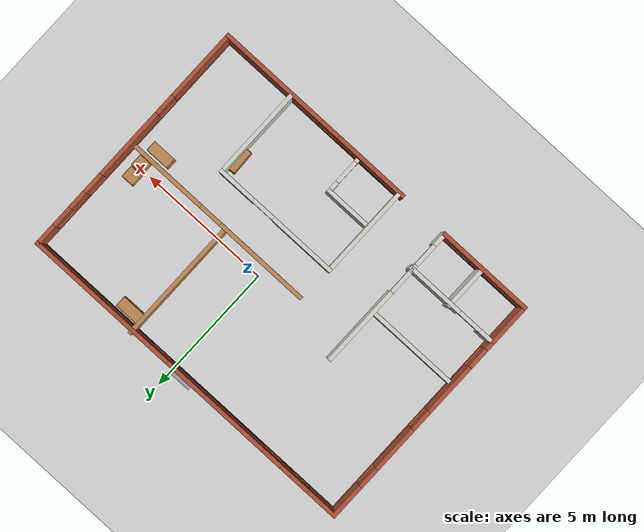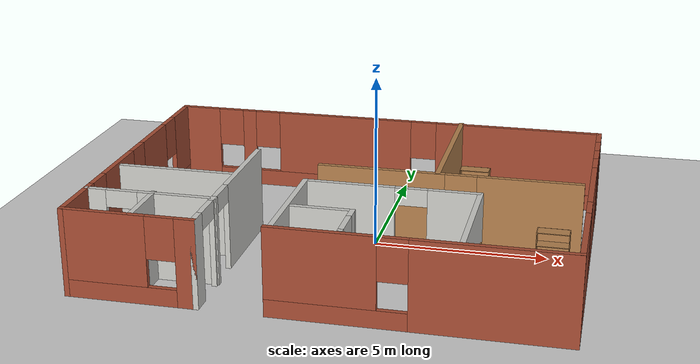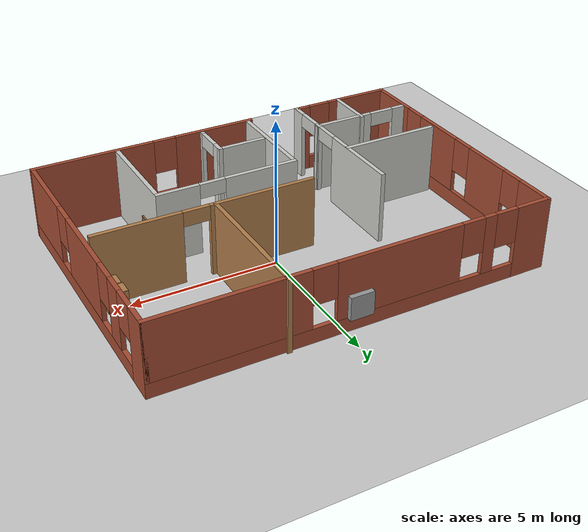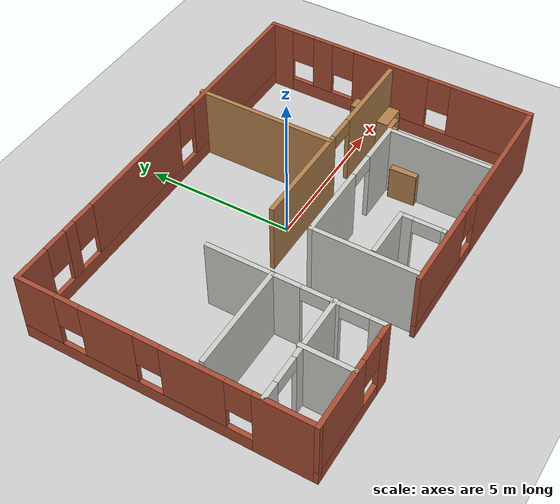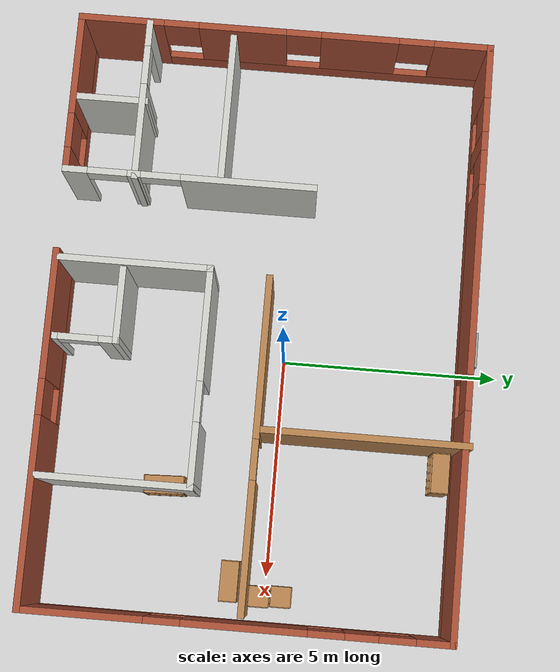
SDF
<sdf version="1.7">
 <world name="default">
  <model name="ground_plane">
   <static>1</static>
   <link name="link">
    <collision name="collision">
     <geometry><plane><normal>0 0 1</normal><size>100 100</size></plane></geometry>
     <surface><friction><ode><mu>100</mu><mu2>50</mu2></ode></friction></surface>
    </collision>
    <visual name="visual">
     <cast_shadows>0</cast_shadows>
     <geometry><plane><normal>0 0 1</normal><size>100 100</size></plane></geometry>
     <material>
      <script><uri>file://media/materials/scripts/gazebo.material</uri><name>Gazebo/Grey</name></script>
     </material>
    </visual>
   </link>
  </model>
  <model name="floorplan2">
   <pose>-0.563381 -0.503591 0 0 -0 0</pose>
   <link name="Wall_0">
    <pose>-4.875 -4.71583 0 0 -0 3.14159</pose>
    <visual name="Wall_0_Visual_0">
     <pose>-1.58866 0 1.25 0 -0 0</pose>
     <geometry><box><size>0.572682 0.15 2.5</size></box></geometry>
     <material>
      <script><uri>file://media/materials/scripts/gazebo.material</uri><name>Gazebo/Bricks</name></script>
      <ambient>1 1 1 1</ambient>
     </material>
     <meta><layer>0</layer></meta>
    </visual>
    <collision name="Wall_0_Collision_0">
     <geometry><box><size>0.572682 0.15 2.5</size></box></geometry>
     <pose>-1.58866 0 1.25 0 -0 0</pose>
    </collision>
    <visual name="Wall_0_Visual_1">
     <pose>0.286341 0 0.25 0 -0 0</pose>
     <geometry><box><size>3.17732 0.15 0.5</size></box></geometry>
     <material>
      <script><uri>file://media/materials/scripts/gazebo.material</uri><name>Gazebo/Bricks</name></script>
      <ambient>1 1 1 1</ambient>
     </material>
     <meta><layer>0</layer></meta>
    </visual>
    <collision name="Wall_0_Collision_1">
     <geometry><box><size>3.17732 0.15 0.5</size></box></geometry>
     <pose>0.286341 0 0.25 0 -0 0</pose>
    </collision>
    <visual name="Wall_0_Visual_2">
     <pose>0.686341 0 1.5 0 -0 0</pose>
     <geometry><box><size>2.37732 0.15 2</size></box></geometry>
     <material>
      <script><uri>file://media/materials/scripts/gazebo.material</uri><name>Gazebo/Bricks</name></script>
      <ambient>1 1 1 1</ambient>
     </material>
     <meta><layer>0</layer></meta>
    </visual>
    <collision name="Wall_0_Collision_2">
     <geometry><box><size>2.37732 0.15 2</size></box></geometry>
     <pose>0.686341 0 1.5 0 -0 0</pose>
    </collision>
    <visual name="Wall_0_Visual_3">
     <pose>-0.902318 0 1.9 0 -0 0</pose>
     <geometry><box><size>0.8 0.15 1.2</size></box></geometry>
     <material>
      <script><uri>file://media/materials/scripts/gazebo.material</uri><name>Gazebo/Bricks</name></script>
      <ambient>1 1 1 1</ambient>
     </material>
     <meta><layer>0</layer></meta>
    </visual>
    <collision name="Wall_0_Collision_3">
     <geometry><box><size>0.8 0.15 1.2</size></box></geometry>
     <pose>-0.902318 0 1.9 0 -0 0</pose>
    </collision>
   </link>
   <link name="Wall_1">
    <pose>-6.675 -0.040833 0 0 -0 1.5708</pose>
    <visual name="Wall_1_Visual_0">
     <pose>-3.77003 0 1.25 0 -0 0</pose>
     <geometry><box><size>1.95995 0.15 2.5</size></box></geometry>
     <material>
      <script><uri>file://media/materials/scripts/gazebo.material</uri><name>Gazebo/Bricks</name></script>
      <ambient>1 1 1 1</ambient>
     </material>
     <meta><layer>0</layer></meta>
    </visual>
    <collision name="Wall_1_Collision_0">
     <geometry><box><size>1.95995 0.15 2.5</size></box></geometry>
     <pose>-3.77003 0 1.25 0 -0 0</pose>
    </collision>
    <visual name="Wall_1_Visual_1">
     <pose>0.979973 0 0.25 0 -0 0</pose>
     <geometry><box><size>7.54005 0.15 0.5</size></box></geometry>
     <material>
      <script><uri>file://media/materials/scripts/gazebo.material</uri><name>Gazebo/Bricks</name></script>
      <ambient>1 1 1 1</ambient>
     </material>
     <meta><layer>0</layer></meta>
    </visual>
    <collision name="Wall_1_Collision_1">
     <geometry><box><size>7.54005 0.15 0.5</size></box></geometry>
     <pose>0.979973 0 0.25 0 -0 0</pose>
    </collision>
    <visual name="Wall_1_Visual_2">
     <pose>-0.987882 0 1.5 0 -0 0</pose>
     <geometry><box><size>2.00434 0.15 2</size></box></geometry>
     <material>
      <script><uri>file://media/materials/scripts/gazebo.material</uri><name>Gazebo/Bricks</name></script>
      <ambient>1 1 1 1</ambient>
     </material>
     <meta><layer>0</layer></meta>
    </visual>
    <collision name="Wall_1_Collision_2">
     <geometry><box><size>2.00434 0.15 2</size></box></geometry>
     <pose>-0.987882 0 1.5 0 -0 0</pose>
    </collision>
    <visual name="Wall_1_Visual_3">
     <pose>1.70516 0 1.5 0 -0 0</pose>
     <geometry><box><size>1.78173 0.15 2</size></box></geometry>
     <material>
      <script><uri>file://media/materials/scripts/gazebo.material</uri><name>Gazebo/Bricks</name></script>
      <ambient>1 1 1 1</ambient>
     </material>
     <meta><layer>0</layer></meta>
    </visual>
    <collision name="Wall_1_Collision_3">
     <geometry><box><size>1.78173 0.15 2</size></box></geometry>
     <pose>1.70516 0 1.5 0 -0 0</pose>
    </collision>
    <visual name="Wall_1_Visual_4">
     <pose>4.07301 0 1.5 0 -0 0</pose>
     <geometry><box><size>1.35398 0.15 2</size></box></geometry>
     <material>
      <script><uri>file://media/materials/scripts/gazebo.material</uri><name>Gazebo/Bricks</name></script>
      <ambient>1 1 1 1</ambient>
     </material>
     <meta><layer>0</layer></meta>
    </visual>
    <collision name="Wall_1_Collision_4">
     <geometry><box><size>1.35398 0.15 2</size></box></geometry>
     <pose>4.07301 0 1.5 0 -0 0</pose>
    </collision>
    <visual name="Wall_1_Visual_5">
     <pose>-2.39005 0 1.9 0 -0 0</pose>
     <geometry><box><size>0.8 0.15 1.2</size></box></geometry>
     <material>
      <script><uri>file://media/materials/scripts/gazebo.material</uri><name>Gazebo/Bricks</name></script>
      <ambient>1 1 1 1</ambient>
     </material>
     <meta><layer>0</layer></meta>
    </visual>
    <collision name="Wall_1_Collision_5">
     <geometry><box><size>0.8 0.15 1.2</size></box></geometry>
     <pose>-2.39005 0 1.9 0 -0 0</pose>
    </collision>
    <visual name="Wall_1_Visual_6">
     <pose>0.41429 0 1.9 0 -0 0</pose>
     <geometry><box><size>0.8 0.15 1.2</size></box></geometry>
     <material>
      <script><uri>file://media/materials/scripts/gazebo.material</uri><name>Gazebo/Bricks</name></script>
      <ambient>1 1 1 1</ambient>
     </material>
     <meta><layer>0</layer></meta>
    </visual>
    <collision name="Wall_1_Collision_6">
     <geometry><box><size>0.8 0.15 1.2</size></box></geometry>
     <pose>0.41429 0 1.9 0 -0 0</pose>
    </collision>
    <visual name="Wall_1_Visual_7">
     <pose>2.99602 0 1.9 0 -0 0</pose>
     <geometry><box><size>0.8 0.15 1.2</size></box></geometry>
     <material>
      <script><uri>file://media/materials/scripts/gazebo.material</uri><name>Gazebo/Bricks</name></script>
      <ambient>1 1 1 1</ambient>
     </material>
     <meta><layer>0</layer></meta>
    </visual>
    <collision name="Wall_1_Collision_7">
     <geometry><box><size>0.8 0.15 1.2</size></box></geometry>
     <pose>2.99602 0 1.9 0 -0 0</pose>
    </collision>
   </link>
   <link name="Wall_11">
    <pose>1.37216 -1.26136 0 0 -0 0</pose>
    <visual name="Wall_11_Visual_0">
     <pose>-1.2012 0 1.25 0 -0 0</pose>
     <geometry><box><size>2.59761 0.15 2.5</size></box></geometry>
     <material>
      <script><uri>file://media/materials/scripts/gazebo.material</uri><name>Gazebo/CeilingTiled</name></script>
      <ambient>1 1 1 1</ambient>
     </material>
     <meta><layer>0</layer></meta>
    </visual>
    <collision name="Wall_11_Collision_0">
     <geometry><box><size>2.59761 0.15 2.5</size></box></geometry>
     <pose>-1.2012 0 1.25 0 -0 0</pose>
    </collision>
    <visual name="Wall_11_Visual_1">
     <pose>1.7488 0 1.25 0 -0 0</pose>
     <geometry><box><size>1.50239 0.15 2.5</size></box></geometry>
     <material>
      <script><uri>file://media/materials/scripts/gazebo.material</uri><name>Gazebo/CeilingTiled</name></script>
      <ambient>1 1 1 1</ambient>
     </material>
     <meta><layer>0</layer></meta>
    </visual>
    <collision name="Wall_11_Collision_1">
     <geometry><box><size>1.50239 0.15 2.5</size></box></geometry>
     <pose>1.7488 0 1.25 0 -0 0</pose>
    </collision>
    <visual name="Wall_11_Visual_2">
     <pose>0.547606 0 2.25 0 -0 0</pose>
     <geometry><box><size>0.9 0.15 0.5</size></box></geometry>
     <material>
      <script><uri>file://media/materials/scripts/gazebo.material</uri><name>Gazebo/CeilingTiled</name></script>
      <ambient>1 1 1 1</ambient>
     </material>
     <meta><layer>0</layer></meta>
    </visual>
    <collision name="Wall_11_Collision_2">
     <geometry><box><size>0.9 0.15 0.5</size></box></geometry>
     <pose>0.547606 0 2.25 0 -0 0</pose>
    </collision>
   </link>
   <link name="Wall_12">
    <collision name="Wall_12_Collision">
     <geometry><box><size>3.5 0.15 2.5</size></box></geometry>
     <pose>0 0 1.25 0 -0 0</pose>
    </collision>
    <visual name="Wall_12_Visual">
     <pose>0 0 1.25 0 -0 0</pose>
     <geometry><box><size>3.5 0.15 2.5</size></box></geometry>
     <material>
      <script><uri>file://media/materials/scripts/gazebo.material</uri><name>Gazebo/CeilingTiled</name></script>
      <ambient>1 1 1 1</ambient>
     </material>
     <meta><layer>0</layer></meta>
    </visual>
    <pose>3.79716 -2.93636 0 0 -0 -1.5708</pose>
   </link>
   <link name="Wall_14">
    <pose>-3.075 -1.91583 0 0 -0 1.5708</pose>
    <visual name="Wall_14_Visual_0">
     <pose>-2.59122 0 1.25 0 -0 0</pose>
     <geometry><box><size>0.567569 0.15 2.5</size></box></geometry>
     <material>
      <script><uri>file://media/materials/scripts/gazebo.material</uri><name>Gazebo/CeilingTiled</name></script>
      <ambient>1 1 1 1</ambient>
     </material>
     <meta><layer>0</layer></meta>
    </visual>
    <collision name="Wall_14_Collision_0">
     <geometry><box><size>0.567569 0.15 2.5</size></box></geometry>
     <pose>-2.59122 0 1.25 0 -0 0</pose>
    </collision>
    <visual name="Wall_14_Visual_1">
     <pose>-1.25629 0 1.25 0 -0 0</pose>
     <geometry><box><size>0.302276 0.15 2.5</size></box></geometry>
     <material>
      <script><uri>file://media/materials/scripts/gazebo.material</uri><name>Gazebo/CeilingTiled</name></script>
      <ambient>1 1 1 1</ambient>
     </material>
     <meta><layer>0</layer></meta>
    </visual>
    <collision name="Wall_14_Collision_1">
     <geometry><box><size>0.302276 0.15 2.5</size></box></geometry>
     <pose>-1.25629 0 1.25 0 -0 0</pose>
    </collision>
    <visual name="Wall_14_Visual_2">
     <pose>1.33492 0 1.25 0 -0 0</pose>
     <geometry><box><size>3.08015 0.15 2.5</size></box></geometry>
     <material>
      <script><uri>file://media/materials/scripts/gazebo.material</uri><name>Gazebo/CeilingTiled</name></script>
      <ambient>1 1 1 1</ambient>
     </material>
     <meta><layer>0</layer></meta>
    </visual>
    <collision name="Wall_14_Collision_2">
     <geometry><box><size>3.08015 0.15 2.5</size></box></geometry>
     <pose>1.33492 0 1.25 0 -0 0</pose>
    </collision>
    <visual name="Wall_14_Visual_3">
     <pose>-1.85743 0 2.25 0 -0 0</pose>
     <geometry><box><size>0.9 0.15 0.5</size></box></geometry>
     <material>
      <script><uri>file://media/materials/scripts/gazebo.material</uri><name>Gazebo/CeilingTiled</name></script>
      <ambient>1 1 1 1</ambient>
     </material>
     <meta><layer>0</layer></meta>
    </visual>
    <collision name="Wall_14_Collision_3">
     <geometry><box><size>0.9 0.15 0.5</size></box></geometry>
     <pose>-1.85743 0 2.25 0 -0 0</pose>
    </collision>
    <visual name="Wall_14_Visual_4">
     <pose>-0.655155 0 2.25 0 -0 0</pose>
     <geometry><box><size>0.9 0.15 0.5</size></box></geometry>
     <material>
      <script><uri>file://media/materials/scripts/gazebo.material</uri><name>Gazebo/CeilingTiled</name></script>
      <ambient>1 1 1 1</ambient>
     </material>
     <meta><layer>0</layer></meta>
    </visual>
    <collision name="Wall_14_Collision_4">
     <geometry><box><size>0.9 0.15 0.5</size></box></geometry>
     <pose>-0.655155 0 2.25 0 -0 0</pose>
    </collision>
   </link>
   <link name="Wall_16">
    <collision name="Wall_16_Collision">
     <geometry><box><size>3.5 0.15 2.5</size></box></geometry>
     <pose>0 0 1.25 0 -0 0</pose>
    </collision>
    <visual name="Wall_16_Visual">
     <pose>0 0 1.25 0 -0 0</pose>
     <geometry><box><size>3.5 0.15 2.5</size></box></geometry>
     <material>
      <script><uri>file://media/materials/scripts/gazebo.material</uri><name>Gazebo/CeilingTiled</name></script>
      <ambient>1 1 1 1</ambient>
     </material>
     <meta><layer>0</layer></meta>
    </visual>
    <pose>-4.76821 -1.2166 0 0 -0 3.14159</pose>
   </link>
   <link name="Wall_18">
    <pose>-4.84044 -3.15144 0 0 -0 3.14159</pose>
    <visual name="Wall_18_Visual_0">
     <pose>-0.760886 0 1.25 0 -0 0</pose>
     <geometry><box><size>2.22823 0.15 2.5</size></box></geometry>
     <material>
      <script><uri>file://media/materials/scripts/gazebo.material</uri><name>Gazebo/CeilingTiled</name></script>
      <ambient>1 1 1 1</ambient>
     </material>
     <meta><layer>0</layer></meta>
    </visual>
    <collision name="Wall_18_Collision_0">
     <geometry><box><size>2.22823 0.15 2.5</size></box></geometry>
     <pose>-0.760886 0 1.25 0 -0 0</pose>
    </collision>
    <visual name="Wall_18_Visual_1">
     <pose>1.56411 0 1.25 0 -0 0</pose>
     <geometry><box><size>0.621771 0.15 2.5</size></box></geometry>
     <material>
      <script><uri>file://media/materials/scripts/gazebo.material</uri><name>Gazebo/CeilingTiled</name></script>
      <ambient>1 1 1 1</ambient>
     </material>
     <meta><layer>0</layer></meta>
    </visual>
    <collision name="Wall_18_Collision_1">
     <geometry><box><size>0.621771 0.15 2.5</size></box></geometry>
     <pose>1.56411 0 1.25 0 -0 0</pose>
    </collision>
    <visual name="Wall_18_Visual_2">
     <pose>0.803229 0 2.25 0 -0 0</pose>
     <geometry><box><size>0.9 0.15 0.5</size></box></geometry>
     <material>
      <script><uri>file://media/materials/scripts/gazebo.material</uri><name>Gazebo/CeilingTiled</name></script>
      <ambient>1 1 1 1</ambient>
     </material>
     <meta><layer>0</layer></meta>
    </visual>
    <collision name="Wall_18_Collision_2">
     <geometry><box><size>0.9 0.15 0.5</size></box></geometry>
     <pose>0.803229 0 2.25 0 -0 0</pose>
    </collision>
   </link>
   <link name="Wall_2">
    <pose>-0 4.63417 0 0 -0 0</pose>
    <visual name="Wall_2_Visual_0">
     <pose>-6.1235 0 1.25 0 -0 0</pose>
     <geometry><box><size>1.25301 0.15 2.5</size></box></geometry>
     <material>
      <script><uri>file://media/materials/scripts/gazebo.material</uri><name>Gazebo/Bricks</name></script>
      <ambient>1 1 1 1</ambient>
     </material>
     <meta><layer>0</layer></meta>
    </visual>
    <collision name="Wall_2_Collision_0">
     <geometry><box><size>1.25301 0.15 2.5</size></box></geometry>
     <pose>-6.1235 0 1.25 0 -0 0</pose>
    </collision>
    <visual name="Wall_2_Visual_1">
     <pose>0.626503 0 0.25 0 -0 0</pose>
     <geometry><box><size>12.247 0.15 0.5</size></box></geometry>
     <material>
      <script><uri>file://media/materials/scripts/gazebo.material</uri><name>Gazebo/Bricks</name></script>
      <ambient>1 1 1 1</ambient>
     </material>
     <meta><layer>0</layer></meta>
    </visual>
    <collision name="Wall_2_Collision_1">
     <geometry><box><size>12.247 0.15 0.5</size></box></geometry>
     <pose>0.626503 0 0.25 0 -0 0</pose>
    </collision>
    <visual name="Wall_2_Visual_2">
     <pose>-4.48199 0 1.5 0 -0 0</pose>
     <geometry><box><size>0.43 0.15 2</size></box></geometry>
     <material>
      <script><uri>file://media/materials/scripts/gazebo.material</uri><name>Gazebo/Bricks</name></script>
      <ambient>1 1 1 1</ambient>
     </material>
     <meta><layer>0</layer></meta>
    </visual>
    <collision name="Wall_2_Collision_2">
     <geometry><box><size>0.43 0.15 2</size></box></geometry>
     <pose>-4.48199 0 1.5 0 -0 0</pose>
    </collision>
    <visual name="Wall_2_Visual_3">
     <pose>-1.31329 0 1.5 0 -0 0</pose>
     <geometry><box><size>4.30742 0.15 2</size></box></geometry>
     <material>
      <script><uri>file://media/materials/scripts/gazebo.material</uri><name>Gazebo/Bricks</name></script>
      <ambient>1 1 1 1</ambient>
     </material>
     <meta><layer>0</layer></meta>
    </visual>
    <collision name="Wall_2_Collision_3">
     <geometry><box><size>4.30742 0.15 2</size></box></geometry>
     <pose>-1.31329 0 1.5 0 -0 0</pose>
    </collision>
    <visual name="Wall_2_Visual_4">
     <pose>4.19521 0 1.5 0 -0 0</pose>
     <geometry><box><size>5.10958 0.15 2</size></box></geometry>
     <material>
      <script><uri>file://media/materials/scripts/gazebo.material</uri><name>Gazebo/Bricks</name></script>
      <ambient>1 1 1 1</ambient>
     </material>
     <meta><layer>0</layer></meta>
    </visual>
    <collision name="Wall_2_Collision_4">
     <geometry><box><size>5.10958 0.15 2</size></box></geometry>
     <pose>4.19521 0 1.5 0 -0 0</pose>
    </collision>
    <visual name="Wall_2_Visual_5">
     <pose>-5.09699 0 1.9 0 -0 0</pose>
     <geometry><box><size>0.8 0.15 1.2</size></box></geometry>
     <material>
      <script><uri>file://media/materials/scripts/gazebo.material</uri><name>Gazebo/Bricks</name></script>
      <ambient>1 1 1 1</ambient>
     </material>
     <meta><layer>0</layer></meta>
    </visual>
    <collision name="Wall_2_Collision_5">
     <geometry><box><size>0.8 0.15 1.2</size></box></geometry>
     <pose>-5.09699 0 1.9 0 -0 0</pose>
    </collision>
    <visual name="Wall_2_Visual_6">
     <pose>-3.86699 0 1.9 0 -0 0</pose>
     <geometry><box><size>0.8 0.15 1.2</size></box></geometry>
     <material>
      <script><uri>file://media/materials/scripts/gazebo.material</uri><name>Gazebo/Bricks</name></script>
      <ambient>1 1 1 1</ambient>
     </material>
     <meta><layer>0</layer></meta>
    </visual>
    <collision name="Wall_2_Collision_6">
     <geometry><box><size>0.8 0.15 1.2</size></box></geometry>
     <pose>-3.86699 0 1.9 0 -0 0</pose>
    </collision>
    <visual name="Wall_2_Visual_7">
     <pose>1.24042 0 1.9 0 -0 0</pose>
     <geometry><box><size>0.8 0.15 1.2</size></box></geometry>
     <material>
      <script><uri>file://media/materials/scripts/gazebo.material</uri><name>Gazebo/Bricks</name></script>
      <ambient>1 1 1 1</ambient>
     </material>
     <meta><layer>0</layer></meta>
    </visual>
    <collision name="Wall_2_Collision_7">
     <geometry><box><size>0.8 0.15 1.2</size></box></geometry>
     <pose>1.24042 0 1.9 0 -0 0</pose>
    </collision>
   </link>
   <link name="Wall_26">
    <collision name="Wall_26_Collision">
     <geometry><box><size>3.5 0.15 2.5</size></box></geometry>
     <pose>0 0 1.25 0 -0 0</pose>
    </collision>
    <visual name="Wall_26_Visual">
     <pose>0 0 1.25 0 -0 0</pose>
     <geometry><box><size>3.5 0.15 2.5</size></box></geometry>
     <material>
      <script><uri>file://media/materials/scripts/gazebo.material</uri><name>Gazebo/CeilingTiled</name></script>
      <ambient>1 1 1 1</ambient>
     </material>
     <meta><layer>0</layer></meta>
    </visual>
    <pose>-1.05284 -2.93636 0 0 -0 -1.5708</pose>
   </link>
   <link name="Wall_29">
    <pose>2.75 -4.71583 0 0 -0 3.14159</pose>
    <visual name="Wall_29_Visual_0">
     <pose>-1.87283 0 1.25 0 -0 0</pose>
     <geometry><box><size>4.25434 0.15 2.5</size></box></geometry>
     <material>
      <script><uri>file://media/materials/scripts/gazebo.material</uri><name>Gazebo/Bricks</name></script>
      <ambient>1 1 1 1</ambient>
     </material>
     <meta><layer>0</layer></meta>
    </visual>
    <collision name="Wall_29_Collision_0">
     <geometry><box><size>4.25434 0.15 2.5</size></box></geometry>
     <pose>-1.87283 0 1.25 0 -0 0</pose>
    </collision>
    <visual name="Wall_29_Visual_1">
     <pose>2.12717 0 0.25 0 -0 0</pose>
     <geometry><box><size>3.74566 0.15 0.5</size></box></geometry>
     <material>
      <script><uri>file://media/materials/scripts/gazebo.material</uri><name>Gazebo/Bricks</name></script>
      <ambient>1 1 1 1</ambient>
     </material>
     <meta><layer>0</layer></meta>
    </visual>
    <collision name="Wall_29_Collision_1">
     <geometry><box><size>3.74566 0.15 0.5</size></box></geometry>
     <pose>2.12717 0 0.25 0 -0 0</pose>
    </collision>
    <visual name="Wall_29_Visual_2">
     <pose>2.52717 0 1.5 0 -0 0</pose>
     <geometry><box><size>2.94565 0.15 2</size></box></geometry>
     <material>
      <script><uri>file://media/materials/scripts/gazebo.material</uri><name>Gazebo/Bricks</name></script>
      <ambient>1 1 1 1</ambient>
     </material>
     <meta><layer>0</layer></meta>
    </visual>
    <collision name="Wall_29_Collision_2">
     <geometry><box><size>2.94565 0.15 2</size></box></geometry>
     <pose>2.52717 0 1.5 0 -0 0</pose>
    </collision>
    <visual name="Wall_29_Visual_3">
     <pose>0.654345 0 1.9 0 -0 0</pose>
     <geometry><box><size>0.8 0.15 1.2</size></box></geometry>
     <material>
      <script><uri>file://media/materials/scripts/gazebo.material</uri><name>Gazebo/Bricks</name></script>
      <ambient>1 1 1 1</ambient>
     </material>
     <meta><layer>0</layer></meta>
    </visual>
    <collision name="Wall_29_Collision_3">
     <geometry><box><size>0.8 0.15 1.2</size></box></geometry>
     <pose>0.654345 0 1.9 0 -0 0</pose>
    </collision>
   </link>
   <link name="Wall_3">
    <pose>6.675 -0.040833 0 0 -0 -1.5708</pose>
    <visual name="Wall_3_Visual_0">
     <pose>-4.31623 0 1.25 0 -0 0</pose>
     <geometry><box><size>0.867546 0.15 2.5</size></box></geometry>
     <material>
      <script><uri>file://media/materials/scripts/gazebo.material</uri><name>Gazebo/Bricks</name></script>
      <ambient>1 1 1 1</ambient>
     </material>
     <meta><layer>0</layer></meta>
    </visual>
    <collision name="Wall_3_Collision_0">
     <geometry><box><size>0.867546 0.15 2.5</size></box></geometry>
     <pose>-4.31623 0 1.25 0 -0 0</pose>
    </collision>
    <visual name="Wall_3_Visual_1">
     <pose>0.433773 0 0.25 0 -0 0</pose>
     <geometry><box><size>8.63245 0.15 0.5</size></box></geometry>
     <material>
      <script><uri>file://media/materials/scripts/gazebo.material</uri><name>Gazebo/Bricks</name></script>
      <ambient>1 1 1 1</ambient>
     </material>
     <meta><layer>0</layer></meta>
    </visual>
    <collision name="Wall_3_Collision_1">
     <geometry><box><size>8.63245 0.15 0.5</size></box></geometry>
     <pose>0.433773 0 0.25 0 -0 0</pose>
    </collision>
    <visual name="Wall_3_Visual_2">
     <pose>-2.71941 0 1.5 0 -0 0</pose>
     <geometry><box><size>0.726087 0.15 2</size></box></geometry>
     <material>
      <script><uri>file://media/materials/scripts/gazebo.material</uri><name>Gazebo/Bricks</name></script>
      <ambient>1 1 1 1</ambient>
     </material>
     <meta><layer>0</layer></meta>
    </visual>
    <collision name="Wall_3_Collision_2">
     <geometry><box><size>0.726087 0.15 2</size></box></geometry>
     <pose>-2.71941 0 1.5 0 -0 0</pose>
    </collision>
    <visual name="Wall_3_Visual_3">
     <pose>-0.193453 0 1.5 0 -0 0</pose>
     <geometry><box><size>2.72583 0.15 2</size></box></geometry>
     <material>
      <script><uri>file://media/materials/scripts/gazebo.material</uri><name>Gazebo/Bricks</name></script>
      <ambient>1 1 1 1</ambient>
     </material>
     <meta><layer>0</layer></meta>
    </visual>
    <collision name="Wall_3_Collision_3">
     <geometry><box><size>2.72583 0.15 2</size></box></geometry>
     <pose>-0.193453 0 1.5 0 -0 0</pose>
    </collision>
    <visual name="Wall_3_Visual_4">
     <pose>3.35973 0 1.5 0 -0 0</pose>
     <geometry><box><size>2.78054 0.15 2</size></box></geometry>
     <material>
      <script><uri>file://media/materials/scripts/gazebo.material</uri><name>Gazebo/Bricks</name></script>
      <ambient>1 1 1 1</ambient>
     </material>
     <meta><layer>0</layer></meta>
    </visual>
    <collision name="Wall_3_Collision_4">
     <geometry><box><size>2.78054 0.15 2</size></box></geometry>
     <pose>3.35973 0 1.5 0 -0 0</pose>
    </collision>
    <visual name="Wall_3_Visual_5">
     <pose>-3.48245 0 1.9 0 -0 0</pose>
     <geometry><box><size>0.8 0.15 1.2</size></box></geometry>
     <material>
      <script><uri>file://media/materials/scripts/gazebo.material</uri><name>Gazebo/Bricks</name></script>
      <ambient>1 1 1 1</ambient>
     </material>
     <meta><layer>0</layer></meta>
    </visual>
    <collision name="Wall_3_Collision_5">
     <geometry><box><size>0.8 0.15 1.2</size></box></geometry>
     <pose>-3.48245 0 1.9 0 -0 0</pose>
    </collision>
    <visual name="Wall_3_Visual_6">
     <pose>-1.95637 0 1.9 0 -0 0</pose>
     <geometry><box><size>0.8 0.15 1.2</size></box></geometry>
     <material>
      <script><uri>file://media/materials/scripts/gazebo.material</uri><name>Gazebo/Bricks</name></script>
      <ambient>1 1 1 1</ambient>
     </material>
     <meta><layer>0</layer></meta>
    </visual>
    <collision name="Wall_3_Collision_6">
     <geometry><box><size>0.8 0.15 1.2</size></box></geometry>
     <pose>-1.95637 0 1.9 0 -0 0</pose>
    </collision>
    <visual name="Wall_3_Visual_7">
     <pose>1.56946 0 1.9 0 -0 0</pose>
     <geometry><box><size>0.8 0.15 1.2</size></box></geometry>
     <material>
      <script><uri>file://media/materials/scripts/gazebo.material</uri><name>Gazebo/Bricks</name></script>
      <ambient>1 1 1 1</ambient>
     </material>
     <meta><layer>0</layer></meta>
    </visual>
    <collision name="Wall_3_Collision_7">
     <geometry><box><size>0.8 0.15 1.2</size></box></geometry>
     <pose>1.56946 0 1.9 0 -0 0</pose>
    </collision>
   </link>
   <link name="Wall_31">
    <pose>0.723683 -3.866 0 0 -0 1.5708</pose>
    <visual name="Wall_31_Visual_0">
     <pose>-0.682454 0 1.25 0 -0 0</pose>
     <geometry><box><size>0.135092 0.15 2.5</size></box></geometry>
     <material>
      <script><uri>file://media/materials/scripts/gazebo.material</uri><name>Gazebo/CeilingTiled</name></script>
      <ambient>1 1 1 1</ambient>
     </material>
     <meta><layer>0</layer></meta>
    </visual>
    <collision name="Wall_31_Collision_0">
     <geometry><box><size>0.135092 0.15 2.5</size></box></geometry>
     <pose>-0.682454 0 1.25 0 -0 0</pose>
    </collision>
    <visual name="Wall_31_Visual_1">
     <pose>0.517546 0 1.25 0 -0 0</pose>
     <geometry><box><size>0.464908 0.15 2.5</size></box></geometry>
     <material>
      <script><uri>file://media/materials/scripts/gazebo.material</uri><name>Gazebo/CeilingTiled</name></script>
      <ambient>1 1 1 1</ambient>
     </material>
     <meta><layer>0</layer></meta>
    </visual>
    <collision name="Wall_31_Collision_1">
     <geometry><box><size>0.464908 0.15 2.5</size></box></geometry>
     <pose>0.517546 0 1.25 0 -0 0</pose>
    </collision>
    <visual name="Wall_31_Visual_2">
     <pose>-0.164908 0 2.25 0 -0 0</pose>
     <geometry><box><size>0.9 0.15 0.5</size></box></geometry>
     <material>
      <script><uri>file://media/materials/scripts/gazebo.material</uri><name>Gazebo/CeilingTiled</name></script>
      <ambient>1 1 1 1</ambient>
     </material>
     <meta><layer>0</layer></meta>
    </visual>
    <collision name="Wall_31_Collision_2">
     <geometry><box><size>0.9 0.15 0.5</size></box></geometry>
     <pose>-0.164908 0 2.25 0 -0 0</pose>
    </collision>
   </link>
   <link name="Wall_32">
    <collision name="Wall_32_Collision">
     <geometry><box><size>1.75 0.15 2.5</size></box></geometry>
     <pose>0 0 1.25 0 -0 0</pose>
    </collision>
    <visual name="Wall_32_Visual">
     <pose>0 0 1.25 0 -0 0</pose>
     <geometry><box><size>1.75 0.15 2.5</size></box></geometry>
     <material>
      <script><uri>file://media/materials/scripts/gazebo.material</uri><name>Gazebo/CeilingTiled</name></script>
      <ambient>1 1 1 1</ambient>
     </material>
     <meta><layer>0</layer></meta>
    </visual>
    <pose>-0.076317 -3.191 0 0 -0 3.14159</pose>
   </link>
   <link name="Wall_34">
    <pose>2.73005 0.06742 0 0 -0 3.14159</pose>
    <visual name="Wall_34_Visual_0">
     <pose>-2.2753 0 1.25 0 -0 0</pose>
     <geometry><box><size>2.94939 0.15 2.5</size></box></geometry>
     <material>
      <script><uri>file://media/materials/scripts/gazebo.material</uri><name>Gazebo/Wood</name></script>
      <ambient>1 1 1 1</ambient>
     </material>
     <meta><layer>0</layer></meta>
    </visual>
    <collision name="Wall_34_Collision_0">
     <geometry><box><size>2.94939 0.15 2.5</size></box></geometry>
     <pose>-2.2753 0 1.25 0 -0 0</pose>
    </collision>
    <visual name="Wall_34_Visual_1">
     <pose>1.9247 0 1.25 0 -0 0</pose>
     <geometry><box><size>3.65061 0.15 2.5</size></box></geometry>
     <material>
      <script><uri>file://media/materials/scripts/gazebo.material</uri><name>Gazebo/Wood</name></script>
      <ambient>1 1 1 1</ambient>
     </material>
     <meta><layer>0</layer></meta>
    </visual>
    <collision name="Wall_34_Collision_1">
     <geometry><box><size>3.65061 0.15 2.5</size></box></geometry>
     <pose>1.9247 0 1.25 0 -0 0</pose>
    </collision>
    <visual name="Wall_34_Visual_2">
     <pose>-0.350607 0 2.25 0 -0 0</pose>
     <geometry><box><size>0.9 0.15 0.5</size></box></geometry>
     <material>
      <script><uri>file://media/materials/scripts/gazebo.material</uri><name>Gazebo/Wood</name></script>
      <ambient>1 1 1 1</ambient>
     </material>
     <meta><layer>0</layer></meta>
    </visual>
    <collision name="Wall_34_Collision_2">
     <geometry><box><size>0.9 0.15 0.5</size></box></geometry>
     <pose>-0.350607 0 2.25 0 -0 0</pose>
    </collision>
   </link>
   <link name="Wall_36">
    <collision name="Wall_36_Collision">
     <geometry><box><size>4.75 0.15 2.5</size></box></geometry>
     <pose>0 0 1.25 0 -0 0</pose>
    </collision>
    <visual name="Wall_36_Visual">
     <pose>0 0 1.25 0 -0 0</pose>
     <geometry><box><size>4.75 0.15 2.5</size></box></geometry>
     <material>
      <script><uri>file://media/materials/scripts/gazebo.material</uri><name>Gazebo/Wood</name></script>
      <ambient>1 1 1 1</ambient>
     </material>
     <meta><layer>0</layer></meta>
    </visual>
    <pose>2.41712 2.41583 0 0 -0 -1.5708</pose>
   </link>
   <link name="Wall_38">
    <collision name="Wall_38_Collision">
     <geometry><box><size>1.75 0.15 2.5</size></box></geometry>
     <pose>0 0 1.25 0 -0 0</pose>
    </collision>
    <visual name="Wall_38_Visual">
     <pose>0 0 1.25 0 -0 0</pose>
     <geometry><box><size>1.75 0.15 2.5</size></box></geometry>
     <material>
      <script><uri>file://media/materials/scripts/gazebo.material</uri><name>Gazebo/CeilingTiled</name></script>
      <ambient>1 1 1 1</ambient>
     </material>
     <meta><layer>0</layer></meta>
    </visual>
    <pose>-4.78548 -3.89055 0 0 -0 1.5708</pose>
   </link>
   <link name="Window_7">
    <collision name="Window_7_Collision">
     <geometry><box><size>0.8 0.17 0.8</size></box></geometry>
     <pose>0 0 0.4 0 -0 0</pose>
    </collision>
    <visual name="Window_7_Visual">
     <pose>0 0 0.4 0 -0 0</pose>
     <geometry><box><size>0.8 0.17 0.8</size></box></geometry>
     <material>
      <script><uri>file://media/materials/scripts/gazebo.material</uri><name>Gazebo/Grey</name></script>
     </material>
    </visual>
    <pose>0.101671 4.81568 0.5 0 -0 0</pose>
   </link>
   <static>1</static>
  </model>
  <model name="bookshelf">
   <static>1</static>
   <link name="link">
    <inertial><mass>1</mass></inertial>
    <collision name="back">
     <pose>0 0.005 0.6 0 -0 0</pose>
     <geometry><box><size>0.9 0.01 1.2</size></box></geometry>
    </collision>
    <visual name="visual1">
     <pose>0 0.005 0.6 0 -0 0</pose>
     <geometry><box><size>0.9 0.01 1.2</size></box></geometry>
     <material>
      <script><uri>file://media/materials/scripts/gazebo.material</uri><name>Gazebo/Wood</name></script>
     </material>
    </visual>
    <collision name="left_side">
     <pose>0.45 -0.195 0.6 0 -0 0</pose>
     <geometry><box><size>0.02 0.4 1.2</size></box></geometry>
    </collision>
    <visual name="visual2">
     <pose>0.45 -0.195 0.6 0 -0 0</pose>
     <geometry><box><size>0.02 0.4 1.2</size></box></geometry>
     <material>
      <script><uri>file://media/materials/scripts/gazebo.material</uri><name>Gazebo/Wood</name></script>
     </material>
    </visual>
    <collision name="right_side">
     <pose>-0.45 -0.195 0.6 0 -0 0</pose>
     <geometry><box><size>0.02 0.4 1.2</size></box></geometry>
    </collision>
    <visual name="visual3">
     <pose>-0.45 -0.195 0.6 0 -0 0</pose>
     <geometry><box><size>0.02 0.4 1.2</size></box></geometry>
     <material>
      <script><uri>file://media/materials/scripts/gazebo.material</uri><name>Gazebo/Wood</name></script>
     </material>
    </visual>
    <collision name="bottom">
     <pose>0 -0.195 0.03 0 -0 0</pose>
     <geometry><box><size>0.88 0.4 0.06</size></box></geometry>
    </collision>
    <visual name="visual4">
     <pose>0 -0.195 0.03 0 -0 0</pose>
     <geometry><box><size>0.88 0.4 0.06</size></box></geometry>
     <material>
      <script><uri>file://media/materials/scripts/gazebo.material</uri><name>Gazebo/Wood</name></script>
     </material>
    </visual>
    <collision name="top">
     <pose>0 -0.195 1.19 0 -0 0</pose>
     <geometry><box><size>0.88 0.4 0.02</size></box></geometry>
    </collision>
    <visual name="visual5">
     <pose>0 -0.195 1.19 0 -0 0</pose>
     <geometry><box><size>0.88 0.4 0.02</size></box></geometry>
     <material>
      <script><uri>file://media/materials/scripts/gazebo.material</uri><name>Gazebo/Wood</name></script>
     </material>
    </visual>
    <collision name="low_shelf">
     <pose>0 -0.195 0.43 0 -0 0</pose>
     <geometry><box><size>0.88 0.4 0.02</size></box></geometry>
    </collision>
    <visual name="visual6">
     <pose>0 -0.195 0.43 0 -0 0</pose>
     <geometry><box><size>0.88 0.4 0.02</size></box></geometry>
     <material>
      <script><uri>file://media/materials/scripts/gazebo.material</uri><name>Gazebo/Wood</name></script>
     </material>
    </visual>
    <collision name="high_shelf">
     <pose>0 -0.195 0.8 0 -0 0</pose>
     <geometry><box><size>0.88 0.4 0.02</size></box></geometry>
    </collision>
    <visual name="visual7">
     <pose>0 -0.195 0.8 0 -0 0</pose>
     <geometry><box><size>0.88 0.4 0.02</size></box></geometry>
     <material>
      <script><uri>file://media/materials/scripts/gazebo.material</uri><name>Gazebo/Wood</name></script>
     </material>
    </visual>
   </link>
   <pose>5.17016 -0.607795 0 0 -0 0</pose>
  </model>
  <model name="cabinet">
   <static>1</static>
   <link name="cabinet_bottom_plate">
    <inertial>
     <pose>0 0 -1 0 -0 0</pose>
     <inertia><ixx>2.05</ixx><ixy>0</ixy><ixz>0</ixz><iyy>2.05</iyy><iyz>0</iyz><izz>2.05</izz></inertia>
     <mass>25</mass>
    </inertial>
    <collision name="cabinet_bottom_plate_geom">
     <pose>0 0 0.01 0 -0 0</pose>
     <geometry><box><size>0.45 0.45 0.02</size></box></geometry>
    </collision>
    <visual name="cabinet_bottom_plate_geom_visual">
     <pose>0 0 0.01 0 -0 0</pose>
     <geometry><box><size>0.45 0.45 0.02</size></box></geometry>
     <material>
      <script><uri>file://media/materials/scripts/gazebo.material</uri><name>Gazebo/Wood</name></script>
     </material>
    </visual>
    <collision name="cabinet_bottom_plate_geom_cabinet_back_plate">
     <pose>0.235 0 0.51 0 -0 0</pose>
     <geometry><box><size>0.02 0.45 1.02</size></box></geometry>
    </collision>
    <visual name="cabinet_bottom_plate_geom_cabinet_back_plate_visual">
     <pose>0.235 0 0.51 0 -0 0</pose>
     <geometry><box><size>0.02 0.45 1.02</size></box></geometry>
     <material>
      <script><uri>file://media/materials/scripts/gazebo.material</uri><name>Gazebo/Wood</name></script>
     </material>
    </visual>
    <collision name="cabinet_bottom_plate_geom_cabinet_left_plate">
     <pose>0 0.235 0.51 0 -0 0</pose>
     <geometry><box><size>0.45 0.02 1.02</size></box></geometry>
    </collision>
    <visual name="cabinet_bottom_plate_geom_cabinet_left_plate_visual">
     <pose>0 0.235 0.51 0 -0 0</pose>
     <geometry><box><size>0.45 0.02 1.02</size></box></geometry>
     <material>
      <script><uri>file://media/materials/scripts/gazebo.material</uri><name>Gazebo/Wood</name></script>
     </material>
    </visual>
    <collision name="cabinet_bottom_plate_geom_cabinet_middle_plate">
     <pose>0 0 0.51 0 -0 0</pose>
     <geometry><box><size>0.45 0.45 0.02</size></box></geometry>
    </collision>
    <visual name="cabinet_bottom_plate_geom_cabinet_middle_plate_visual">
     <pose>0 0 0.51 0 -0 0</pose>
     <geometry><box><size>0.45 0.45 0.02</size></box></geometry>
     <material>
      <script><uri>file://media/materials/scripts/gazebo.material</uri><name>Gazebo/Wood</name></script>
     </material>
    </visual>
    <collision name="cabinet_bottom_plate_geom_cabinet_right_plate">
     <pose>0 -0.235 0.51 0 -0 0</pose>
     <geometry><box><size>0.45 0.02 1.02</size></box></geometry>
    </collision>
    <visual name="cabinet_bottom_plate_geom_cabinet_right_plate_visual">
     <pose>0 -0.235 0.51 0 -0 0</pose>
     <geometry><box><size>0.45 0.02 1.02</size></box></geometry>
     <material>
      <script><uri>file://media/materials/scripts/gazebo.material</uri><name>Gazebo/Wood</name></script>
     </material>
    </visual>
    <collision name="cabinet_bottom_plate_geom_cabinet_top_plate">
     <pose>0 0 1.01 0 -0 0</pose>
     <geometry><box><size>0.45 0.45 0.02</size></box></geometry>
    </collision>
    <visual name="cabinet_bottom_plate_geom_cabinet_top_plate_visual">
     <pose>0 0 1.01 0 -0 0</pose>
     <geometry><box><size>0.45 0.45 0.02</size></box></geometry>
     <material>
      <script><uri>file://media/materials/scripts/gazebo.material</uri><name>Gazebo/Wood</name></script>
     </material>
    </visual>
   </link>
   <pose>5.45396 -0.116203 0 0 -0 0</pose>
  </model>
  <model name="cabinet_0">
   <static>1</static>
   <link name="cabinet_bottom_plate">
    <inertial>
     <pose>0 0 -1 0 -0 0</pose>
     <inertia><ixx>2.05</ixx><ixy>0</ixy><ixz>0</ixz><iyy>2.05</iyy><iyz>0</iyz><izz>2.05</izz></inertia>
     <mass>25</mass>
    </inertial>
    <collision name="cabinet_bottom_plate_geom">
     <pose>0 0 0.01 0 -0 0</pose>
     <geometry><box><size>0.45 0.45 0.02</size></box></geometry>
    </collision>
    <visual name="cabinet_bottom_plate_geom_visual">
     <pose>0 0 0.01 0 -0 0</pose>
     <geometry><box><size>0.45 0.45 0.02</size></box></geometry>
     <material>
      <script><uri>file://media/materials/scripts/gazebo.material</uri><name>Gazebo/Wood</name></script>
     </material>
    </visual>
    <collision name="cabinet_bottom_plate_geom_cabinet_back_plate">
     <pose>0.235 0 0.51 0 -0 0</pose>
     <geometry><box><size>0.02 0.45 1.02</size></box></geometry>
    </collision>
    <visual name="cabinet_bottom_plate_geom_cabinet_back_plate_visual">
     <pose>0.235 0 0.51 0 -0 0</pose>
     <geometry><box><size>0.02 0.45 1.02</size></box></geometry>
     <material>
      <script><uri>file://media/materials/scripts/gazebo.material</uri><name>Gazebo/Wood</name></script>
     </material>
    </visual>
    <collision name="cabinet_bottom_plate_geom_cabinet_left_plate">
     <pose>0 0.235 0.51 0 -0 0</pose>
     <geometry><box><size>0.45 0.02 1.02</size></box></geometry>
    </collision>
    <visual name="cabinet_bottom_plate_geom_cabinet_left_plate_visual">
     <pose>0 0.235 0.51 0 -0 0</pose>
     <geometry><box><size>0.45 0.02 1.02</size></box></geometry>
     <material>
      <script><uri>file://media/materials/scripts/gazebo.material</uri><name>Gazebo/Wood</name></script>
     </material>
    </visual>
    <collision name="cabinet_bottom_plate_geom_cabinet_middle_plate">
     <pose>0 0 0.51 0 -0 0</pose>
     <geometry><box><size>0.45 0.45 0.02</size></box></geometry>
    </collision>
    <visual name="cabinet_bottom_plate_geom_cabinet_middle_plate_visual">
     <pose>0 0 0.51 0 -0 0</pose>
     <geometry><box><size>0.45 0.45 0.02</size></box></geometry>
     <material>
      <script><uri>file://media/materials/scripts/gazebo.material</uri><name>Gazebo/Wood</name></script>
     </material>
    </visual>
    <collision name="cabinet_bottom_plate_geom_cabinet_right_plate">
     <pose>0 -0.235 0.51 0 -0 0</pose>
     <geometry><box><size>0.45 0.02 1.02</size></box></geometry>
    </collision>
    <visual name="cabinet_bottom_plate_geom_cabinet_right_plate_visual">
     <pose>0 -0.235 0.51 0 -0 0</pose>
     <geometry><box><size>0.45 0.02 1.02</size></box></geometry>
     <material>
      <script><uri>file://media/materials/scripts/gazebo.material</uri><name>Gazebo/Wood</name></script>
     </material>
    </visual>
    <collision name="cabinet_bottom_plate_geom_cabinet_top_plate">
     <pose>0 0 1.01 0 -0 0</pose>
     <geometry><box><size>0.45 0.45 0.02</size></box></geometry>
    </collision>
    <visual name="cabinet_bottom_plate_geom_cabinet_top_plate_visual">
     <pose>0 0 1.01 0 -0 0</pose>
     <geometry><box><size>0.45 0.45 0.02</size></box></geometry>
     <material>
      <script><uri>file://media/materials/scripts/gazebo.material</uri><name>Gazebo/Wood</name></script>
     </material>
    </visual>
   </link>
   <pose>5.42399 0.376649 0 0 -0 0</pose>
  </model>
  <model name="bookshelf_0">
   <static>1</static>
   <link name="link">
    <inertial><mass>1</mass></inertial>
    <collision name="back">
     <pose>0 0.005 0.6 0 -0 0</pose>
     <geometry><box><size>0.9 0.01 1.2</size></box></geometry>
    </collision>
    <visual name="visual1">
     <pose>0 0.005 0.6 0 -0 0</pose>
     <geometry><box><size>0.9 0.01 1.2</size></box></geometry>
     <material>
      <script><uri>file://media/materials/scripts/gazebo.material</uri><name>Gazebo/Wood</name></script>
     </material>
    </visual>
    <collision name="left_side">
     <pose>0.45 -0.195 0.6 0 -0 0</pose>
     <geometry><box><size>0.02 0.4 1.2</size></box></geometry>
    </collision>
    <visual name="visual2">
     <pose>0.45 -0.195 0.6 0 -0 0</pose>
     <geometry><box><size>0.02 0.4 1.2</size></box></geometry>
     <material>
      <script><uri>file://media/materials/scripts/gazebo.material</uri><name>Gazebo/Wood</name></script>
     </material>
    </visual>
    <collision name="right_side">
     <pose>-0.45 -0.195 0.6 0 -0 0</pose>
     <geometry><box><size>0.02 0.4 1.2</size></box></geometry>
    </collision>
    <visual name="visual3">
     <pose>-0.45 -0.195 0.6 0 -0 0</pose>
     <geometry><box><size>0.02 0.4 1.2</size></box></geometry>
     <material>
      <script><uri>file://media/materials/scripts/gazebo.material</uri><name>Gazebo/Wood</name></script>
     </material>
    </visual>
    <collision name="bottom">
     <pose>0 -0.195 0.03 0 -0 0</pose>
     <geometry><box><size>0.88 0.4 0.06</size></box></geometry>
    </collision>
    <visual name="visual4">
     <pose>0 -0.195 0.03 0 -0 0</pose>
     <geometry><box><size>0.88 0.4 0.06</size></box></geometry>
     <material>
      <script><uri>file://media/materials/scripts/gazebo.material</uri><name>Gazebo/Wood</name></script>
     </material>
    </visual>
    <collision name="top">
     <pose>0 -0.195 1.19 0 -0 0</pose>
     <geometry><box><size>0.88 0.4 0.02</size></box></geometry>
    </collision>
    <visual name="visual5">
     <pose>0 -0.195 1.19 0 -0 0</pose>
     <geometry><box><size>0.88 0.4 0.02</size></box></geometry>
     <material>
      <script><uri>file://media/materials/scripts/gazebo.material</uri><name>Gazebo/Wood</name></script>
     </material>
    </visual>
    <collision name="low_shelf">
     <pose>0 -0.195 0.43 0 -0 0</pose>
     <geometry><box><size>0.88 0.4 0.02</size></box></geometry>
    </collision>
    <visual name="visual6">
     <pose>0 -0.195 0.43 0 -0 0</pose>
     <geometry><box><size>0.88 0.4 0.02</size></box></geometry>
     <material>
      <script><uri>file://media/materials/scripts/gazebo.material</uri><name>Gazebo/Wood</name></script>
     </material>
    </visual>
    <collision name="high_shelf">
     <pose>0 -0.195 0.8 0 -0 0</pose>
     <geometry><box><size>0.88 0.4 0.02</size></box></geometry>
    </collision>
    <visual name="visual7">
     <pose>0 -0.195 0.8 0 -0 0</pose>
     <geometry><box><size>0.88 0.4 0.02</size></box></geometry>
     <material>
      <script><uri>file://media/materials/scripts/gazebo.material</uri><name>Gazebo/Wood</name></script>
     </material>
    </visual>
   </link>
   <pose>2.39567 3.94225 0 0 -0 0</pose>
  </model>
  <model name="bookshelf_1">
   <static>1</static>
   <link name="link">
    <inertial><mass>1</mass></inertial>
    <collision name="back">
     <pose>0 0.005 0.6 0 -0 0</pose>
     <geometry><box><size>0.9 0.01 1.2</size></box></geometry>
    </collision>
    <visual name="visual1">
     <pose>0 0.005 0.6 0 -0 0</pose>
     <geometry><box><size>0.9 0.01 1.2</size></box></geometry>
     <material>
      <script><uri>file://media/materials/scripts/gazebo.material</uri><name>Gazebo/Wood</name></script>
     </material>
    </visual>
    <collision name="left_side">
     <pose>0.45 -0.195 0.6 0 -0 0</pose>
     <geometry><box><size>0.02 0.4 1.2</size></box></geometry>
    </collision>
    <visual name="visual2">
     <pose>0.45 -0.195 0.6 0 -0 0</pose>
     <geometry><box><size>0.02 0.4 1.2</size></box></geometry>
     <material>
      <script><uri>file://media/materials/scripts/gazebo.material</uri><name>Gazebo/Wood</name></script>
     </material>
    </visual>
    <collision name="right_side">
     <pose>-0.45 -0.195 0.6 0 -0 0</pose>
     <geometry><box><size>0.02 0.4 1.2</size></box></geometry>
    </collision>
    <visual name="visual3">
     <pose>-0.45 -0.195 0.6 0 -0 0</pose>
     <geometry><box><size>0.02 0.4 1.2</size></box></geometry>
     <material>
      <script><uri>file://media/materials/scripts/gazebo.material</uri><name>Gazebo/Wood</name></script>
     </material>
    </visual>
    <collision name="bottom">
     <pose>0 -0.195 0.03 0 -0 0</pose>
     <geometry><box><size>0.88 0.4 0.06</size></box></geometry>
    </collision>
    <visual name="visual4">
     <pose>0 -0.195 0.03 0 -0 0</pose>
     <geometry><box><size>0.88 0.4 0.06</size></box></geometry>
     <material>
      <script><uri>file://media/materials/scripts/gazebo.material</uri><name>Gazebo/Wood</name></script>
     </material>
    </visual>
    <collision name="top">
     <pose>0 -0.195 1.19 0 -0 0</pose>
     <geometry><box><size>0.88 0.4 0.02</size></box></geometry>
    </collision>
    <visual name="visual5">
     <pose>0 -0.195 1.19 0 -0 0</pose>
     <geometry><box><size>0.88 0.4 0.02</size></box></geometry>
     <material>
      <script><uri>file://media/materials/scripts/gazebo.material</uri><name>Gazebo/Wood</name></script>
     </material>
    </visual>
    <collision name="low_shelf">
     <pose>0 -0.195 0.43 0 -0 0</pose>
     <geometry><box><size>0.88 0.4 0.02</size></box></geometry>
    </collision>
    <visual name="visual6">
     <pose>0 -0.195 0.43 0 -0 0</pose>
     <geometry><box><size>0.88 0.4 0.02</size></box></geometry>
     <material>
      <script><uri>file://media/materials/scripts/gazebo.material</uri><name>Gazebo/Wood</name></script>
     </material>
    </visual>
    <collision name="high_shelf">
     <pose>0 -0.195 0.8 0 -0 0</pose>
     <geometry><box><size>0.88 0.4 0.02</size></box></geometry>
    </collision>
    <visual name="visual7">
     <pose>0 -0.195 0.8 0 -0 0</pose>
     <geometry><box><size>0.88 0.4 0.02</size></box></geometry>
     <material>
      <script><uri>file://media/materials/scripts/gazebo.material</uri><name>Gazebo/Wood</name></script>
     </material>
    </visual>
   </link>
   <pose>2.954 -2.4566 0 0 -0 1.6069</pose>
  </model>
 </world>
</sdf>
